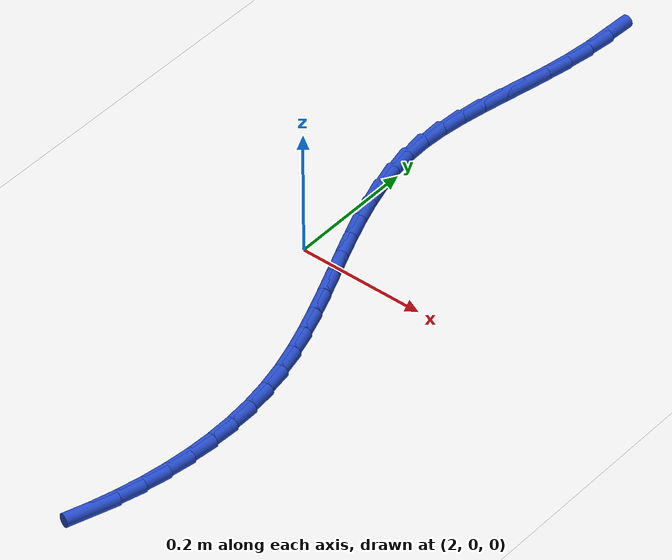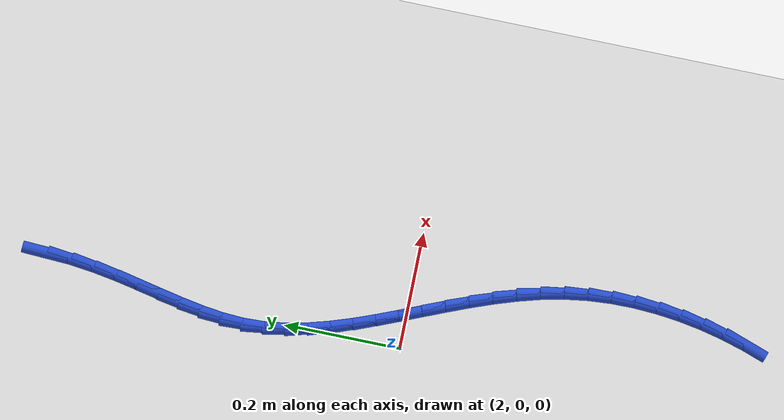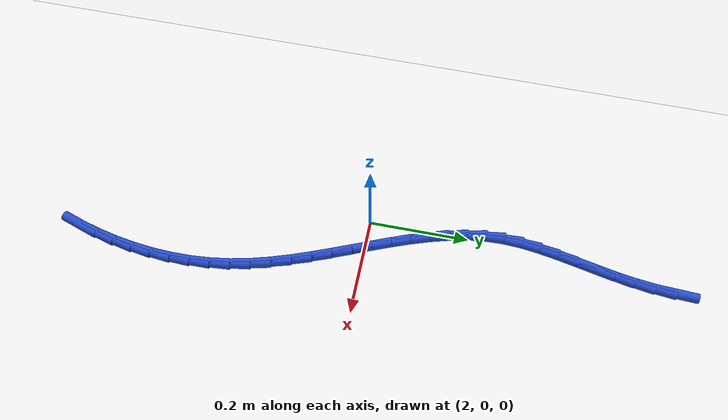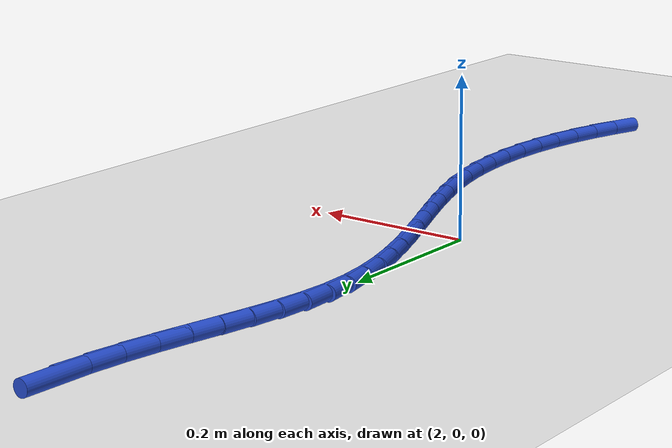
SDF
<sdf version="1.6">
 <world name="default">
  <model name="ground_plane">
   <static>1</static>
   <link name="link">
    <collision name="collision">
     <geometry><plane><normal>0 0 1</normal><size>100 100</size></plane></geometry>
     <surface><friction><ode><mu>100</mu><mu2>50</mu2></ode></friction></surface>
    </collision>
    <visual name="visual">
     <cast_shadows>0</cast_shadows>
     <geometry><plane><normal>0 0 1</normal><size>100 100</size></plane></geometry>
     <material>
      <script><uri>file://media/materials/scripts/gazebo.material</uri><name>Gazebo/WhiteGlow</name></script>
     </material>
    </visual>
   </link>
  </model>
  <model name="line">
   <link name="link_78">
    <pose>2.03948632776023 0.6213206573668499 0.01 0 1.57 1.5211225703982851</pose>
    <collision name="collision">
     <geometry><cylinder><radius>0.01</radius><length>0.08</length></cylinder></geometry>
    </collision>
    <visual name="visual">
     <material>
      <script><name>Gazebo/Blue</name><uri>file://media/materials/scripts/gazebo.material</uri></script>
     </material>
     <geometry><cylinder><radius>0.01</radius><length>0.08</length></cylinder></geometry>
    </visual>
   </link>
   <link name="link_79">
    <pose>2.037345700871489 0.5782623887482059 0.01 0 1.57 1.4560879660963555</pose>
    <collision name="collision">
     <geometry><cylinder><radius>0.01</radius><length>0.08</length></cylinder></geometry>
    </collision>
    <visual name="visual">
     <material>
      <script><name>Gazebo/Blue</name><uri>file://media/materials/scripts/gazebo.material</uri></script>
     </material>
     <geometry><cylinder><radius>0.01</radius><length>0.08</length></cylinder></geometry>
    </visual>
   </link>
   <link name="link_80">
    <pose>2.0325423166481733 0.536571460254334 0.01 0 1.57 1.4066875570438526</pose>
    <collision name="collision">
     <geometry><cylinder><radius>0.01</radius><length>0.08</length></cylinder></geometry>
    </collision>
    <visual name="visual">
     <material>
      <script><name>Gazebo/Blue</name><uri>file://media/materials/scripts/gazebo.material</uri></script>
     </material>
     <geometry><cylinder><radius>0.01</radius><length>0.08</length></cylinder></geometry>
    </visual>
   </link>
   <link name="link_81">
    <pose>2.0258391399916453 0.49609286553165727 0.01 0 1.57 1.3745373788478181</pose>
    <collision name="collision">
     <geometry><cylinder><radius>0.01</radius><length>0.08</length></cylinder></geometry>
    </collision>
    <visual name="visual">
     <material>
      <script><name>Gazebo/Blue</name><uri>file://media/materials/scripts/gazebo.material</uri></script>
     </material>
     <geometry><cylinder><radius>0.01</radius><length>0.08</length></cylinder></geometry>
    </visual>
   </link>
   <link name="link_82">
    <pose>2.018000726140692 0.45666783213092826 0.01 0 1.57 1.3608791147492256</pose>
    <collision name="collision">
     <geometry><cylinder><radius>0.01</radius><length>0.08</length></cylinder></geometry>
    </collision>
    <visual name="visual">
     <material>
      <script><name>Gazebo/Blue</name><uri>file://media/materials/scripts/gazebo.material</uri></script>
     </material>
     <geometry><cylinder><radius>0.01</radius><length>0.08</length></cylinder></geometry>
    </visual>
   </link>
   <link name="link_83">
    <pose>2.009791630334101 0.41813758760289943 0.01 0 1.57 1.3668867668807954</pose>
    <collision name="collision">
     <geometry><cylinder><radius>0.01</radius><length>0.08</length></cylinder></geometry>
    </collision>
    <visual name="visual">
     <material>
      <script><name>Gazebo/Blue</name><uri>file://media/materials/scripts/gazebo.material</uri></script>
     </material>
     <geometry><cylinder><radius>0.01</radius><length>0.08</length></cylinder></geometry>
    </visual>
   </link>
   <link name="link_84">
    <pose>2.001976407810659 0.3803433594983219 0.01 0 1.57 1.3938035550903427</pose>
    <collision name="collision">
     <geometry><cylinder><radius>0.01</radius><length>0.08</length></cylinder></geometry>
    </collision>
    <visual name="visual">
     <material>
      <script><name>Gazebo/Blue</name><uri>file://media/materials/scripts/gazebo.material</uri></script>
     </material>
     <geometry><cylinder><radius>0.01</radius><length>0.08</length></cylinder></geometry>
    </visual>
   </link>
   <link name="link_85">
    <pose>1.9953196138091542 0.3431263753679482 0.01 0 1.57 1.4428576271031066</pose>
    <collision name="collision">
     <geometry><cylinder><radius>0.01</radius><length>0.08</length></cylinder></geometry>
    </collision>
    <visual name="visual">
     <material>
      <script><name>Gazebo/Blue</name><uri>file://media/materials/scripts/gazebo.material</uri></script>
     </material>
     <geometry><cylinder><radius>0.01</radius><length>0.08</length></cylinder></geometry>
    </visual>
   </link>
   <link name="link_86">
    <pose>1.9905858035683737 0.3063278627625307 0.01 0 1.57 1.5148520904990803</pose>
    <collision name="collision">
     <geometry><cylinder><radius>0.01</radius><length>0.08</length></cylinder></geometry>
    </collision>
    <visual name="visual">
     <material>
      <script><name>Gazebo/Blue</name><uri>file://media/materials/scripts/gazebo.material</uri></script>
     </material>
     <geometry><cylinder><radius>0.01</radius><length>0.08</length></cylinder></geometry>
    </visual>
   </link>
   <link name="link_87">
    <pose>1.9885395323271045 0.2697890492328206 0.01 0 1.57 -1.5332171375938304</pose>
    <collision name="collision">
     <geometry><cylinder><radius>0.01</radius><length>0.08</length></cylinder></geometry>
    </collision>
    <visual name="visual">
     <material>
      <script><name>Gazebo/Blue</name><uri>file://media/materials/scripts/gazebo.material</uri></script>
     </material>
     <geometry><cylinder><radius>0.01</radius><length>0.08</length></cylinder></geometry>
    </visual>
   </link>
   <link name="link_88">
    <pose>1.9899093535157553 0.23335462000157955 0.01 0 1.57 -1.4379028784599488</pose>
    <collision name="collision">
     <geometry><cylinder><radius>0.01</radius><length>0.08</length></cylinder></geometry>
    </collision>
    <visual name="visual">
     <material>
      <script><name>Gazebo/Blue</name><uri>file://media/materials/scripts/gazebo.material</uri></script>
     </material>
     <geometry><cylinder><radius>0.01</radius><length>0.08</length></cylinder></geometry>
    </visual>
   </link>
   <link name="link_89">
    <pose>1.9947784799182375 0.196931239852884 0.01 0 1.57 -1.3575325213501228</pose>
    <collision name="collision">
     <geometry><cylinder><radius>0.01</radius><length>0.08</length></cylinder></geometry>
    </collision>
    <visual name="visual">
     <material>
      <script><name>Gazebo/Blue</name><uri>file://media/materials/scripts/gazebo.material</uri></script>
     </material>
     <geometry><cylinder><radius>0.01</radius><length>0.08</length></cylinder></geometry>
    </visual>
   </link>
   <link name="link_90">
    <pose>2.0026724351554925 0.16047913494162827 0.01 0 1.57 -1.2926992399388133</pose>
    <collision name="collision">
     <geometry><cylinder><radius>0.01</radius><length>0.08</length></cylinder></geometry>
    </collision>
    <visual name="visual">
     <material>
      <script><name>Gazebo/Blue</name><uri>file://media/materials/scripts/gazebo.material</uri></script>
     </material>
     <geometry><cylinder><radius>0.01</radius><length>0.08</length></cylinder></geometry>
    </visual>
   </link>
   <link name="link_91">
    <pose>2.0130983885215774 0.1239602942019989 0.01 0 1.57 -1.242737202325324</pose>
    <collision name="collision">
     <geometry><cylinder><radius>0.01</radius><length>0.08</length></cylinder></geometry>
    </collision>
    <visual name="visual">
     <material>
      <script><name>Gazebo/Blue</name><uri>file://media/materials/scripts/gazebo.material</uri></script>
     </material>
     <geometry><cylinder><radius>0.01</radius><length>0.08</length></cylinder></geometry>
    </visual>
   </link>
   <link name="link_92">
    <pose>2.0255635093105493 0.08733670656818339 0.01 0 1.57 -1.206693139628329</pose>
    <collision name="collision">
     <geometry><cylinder><radius>0.01</radius><length>0.08</length></cylinder></geometry>
    </collision>
    <visual name="visual">
     <material>
      <script><name>Gazebo/Blue</name><uri>file://media/materials/scripts/gazebo.material</uri></script>
     </material>
     <geometry><cylinder><radius>0.01</radius><length>0.08</length></cylinder></geometry>
    </visual>
   </link>
   <link name="link_93">
    <pose>2.0395749668164647 0.05057036097436932 0.01 0 1.57 -1.1836319836258284</pose>
    <collision name="collision">
     <geometry><cylinder><radius>0.01</radius><length>0.08</length></cylinder></geometry>
    </collision>
    <visual name="visual">
     <material>
      <script><name>Gazebo/Blue</name><uri>file://media/materials/scripts/gazebo.material</uri></script>
     </material>
     <geometry><cylinder><radius>0.01</radius><length>0.08</length></cylinder></geometry>
    </visual>
   </link>
   <link name="link_94">
    <pose>2.054639930333378 0.013623246354743025 0.01 0 1.57 -1.172803287694468</pose>
    <collision name="collision">
     <geometry><cylinder><radius>0.01</radius><length>0.08</length></cylinder></geometry>
    </collision>
    <visual name="visual">
     <material>
      <script><name>Gazebo/Blue</name><uri>file://media/materials/scripts/gazebo.material</uri></script>
     </material>
     <geometry><cylinder><radius>0.01</radius><length>0.08</length></cylinder></geometry>
    </visual>
   </link>
   <link name="link_95">
    <pose>2.070265569155349 -0.023542648356507864 0.01 0 1.57 -1.1737146312078346</pose>
    <collision name="collision">
     <geometry><cylinder><radius>0.01</radius><length>0.08</length></cylinder></geometry>
    </collision>
    <visual name="visual">
     <material>
      <script><name>Gazebo/Blue</name><uri>file://media/materials/scripts/gazebo.material</uri></script>
     </material>
     <geometry><cylinder><radius>0.01</radius><length>0.08</length></cylinder></geometry>
    </visual>
   </link>
   <link name="link_96">
    <pose>2.085959052576433 -0.0609653342251962 0.01 0 1.57 -1.1861484435175167</pose>
    <collision name="collision">
     <geometry><cylinder><radius>0.01</radius><length>0.08</length></cylinder></geometry>
    </collision>
    <visual name="visual">
     <material>
      <script><name>Gazebo/Blue</name><uri>file://media/materials/scripts/gazebo.material</uri></script>
     </material>
     <geometry><cylinder><radius>0.01</radius><length>0.08</length></cylinder></geometry>
    </visual>
   </link>
   <link name="link_97">
    <pose>2.1012275498906865 -0.09868282231713488 0.01 0 1.57 -1.210141843869885</pose>
    <collision name="collision">
     <geometry><cylinder><radius>0.01</radius><length>0.08</length></cylinder></geometry>
    </collision>
    <visual name="visual">
     <material>
      <script><name>Gazebo/Blue</name><uri>file://media/materials/scripts/gazebo.material</uri></script>
     </material>
     <geometry><cylinder><radius>0.01</radius><length>0.08</length></cylinder></geometry>
    </visual>
   </link>
   <link name="link_98">
    <pose>2.115578230392165 -0.13673312369813578 0.01 0 1.57 -1.2459337496849923</pose>
    <collision name="collision">
     <geometry><cylinder><radius>0.01</radius><length>0.08</length></cylinder></geometry>
    </collision>
    <visual name="visual">
     <material>
      <script><name>Gazebo/Blue</name><uri>file://media/materials/scripts/gazebo.material</uri></script>
     </material>
     <geometry><cylinder><radius>0.01</radius><length>0.08</length></cylinder></geometry>
    </visual>
   </link>
   <link name="link_99">
    <pose>2.128518263374927 -0.1751542494340135 0.01 0 1.57 -1.2938714971440366</pose>
    <collision name="collision">
     <geometry><cylinder><radius>0.01</radius><length>0.08</length></cylinder></geometry>
    </collision>
    <visual name="visual">
     <material>
      <script><name>Gazebo/Blue</name><uri>file://media/materials/scripts/gazebo.material</uri></script>
     </material>
     <geometry><cylinder><radius>0.01</radius><length>0.08</length></cylinder></geometry>
    </visual>
   </link>
   <link name="link_100">
    <pose>2.139554818133028 -0.21398421059057995 0.01 0 1.57 -1.3542616379485022</pose>
    <collision name="collision">
     <geometry><cylinder><radius>0.01</radius><length>0.08</length></cylinder></geometry>
    </collision>
    <visual name="visual">
     <material>
      <script><name>Gazebo/Blue</name><uri>file://media/materials/scripts/gazebo.material</uri></script>
     </material>
     <geometry><cylinder><radius>0.01</radius><length>0.08</length></cylinder></geometry>
    </visual>
   </link>
   <link name="link_101">
    <pose>2.1481950722040866 -0.2532610156212719 0.01 0 1.57 -1.4242128746080038</pose>
    <collision name="collision">
     <geometry><cylinder><radius>0.01</radius><length>0.08</length></cylinder></geometry>
    </collision>
    <visual name="visual">
     <material>
      <script><name>Gazebo/Blue</name><uri>file://media/materials/scripts/gazebo.material</uri></script>
     </material>
     <geometry><cylinder><radius>0.01</radius><length>0.08</length></cylinder></geometry>
    </visual>
   </link>
   <link name="link_102">
    <pose>2.154060243810876 -0.2929865336010778 0.01 0 1.57 -1.4932523351027345</pose>
    <collision name="collision">
     <geometry><cylinder><radius>0.01</radius><length>0.08</length></cylinder></geometry>
    </collision>
    <visual name="visual">
     <material>
      <script><name>Gazebo/Blue</name><uri>file://media/materials/scripts/gazebo.material</uri></script>
     </material>
     <geometry><cylinder><radius>0.01</radius><length>0.08</length></cylinder></geometry>
    </visual>
   </link>
   <link name="link_103">
    <pose>2.157172056791321 -0.33303571377829 0.01 0 1.57 -1.5591595414252912</pose>
    <collision name="collision">
     <geometry><cylinder><radius>0.01</radius><length>0.08</length></cylinder></geometry>
    </collision>
    <visual name="visual">
     <material>
      <script><name>Gazebo/Blue</name><uri>file://media/materials/scripts/gazebo.material</uri></script>
     </material>
     <geometry><cylinder><radius>0.01</radius><length>0.08</length></cylinder></geometry>
    </visual>
   </link>
   <link name="link_104">
    <pose>2.1576401087803454 -0.37325565828329693 0.01 0 1.57 1.5194938734135208</pose>
    <collision name="collision">
     <geometry><cylinder><radius>0.01</radius><length>0.08</length></cylinder></geometry>
    </collision>
    <visual name="visual">
     <material>
      <script><name>Gazebo/Blue</name><uri>file://media/materials/scripts/gazebo.material</uri></script>
     </material>
     <geometry><cylinder><radius>0.01</radius><length>0.08</length></cylinder></geometry>
    </visual>
   </link>
   <link name="link_105">
    <pose>2.155573997412872 -0.41349346924648595 0.01 0 1.57 1.459281687127908</pose>
    <collision name="collision">
     <geometry><cylinder><radius>0.01</radius><length>0.08</length></cylinder></geometry>
    </collision>
    <visual name="visual">
     <material>
      <script><name>Gazebo/Blue</name><uri>file://media/materials/scripts/gazebo.material</uri></script>
     </material>
     <geometry><cylinder><radius>0.01</radius><length>0.08</length></cylinder></geometry>
    </visual>
   </link>
   <link name="link_106">
    <pose>2.1510833203238238 -0.45359624879824734 0.01 0 1.57 1.4015001657494344</pose>
    <collision name="collision">
     <geometry><cylinder><radius>0.01</radius><length>0.08</length></cylinder></geometry>
    </collision>
    <visual name="visual">
     <material>
      <script><name>Gazebo/Blue</name><uri>file://media/materials/scripts/gazebo.material</uri></script>
     </material>
     <geometry><cylinder><radius>0.01</radius><length>0.08</length></cylinder></geometry>
    </visual>
   </link>
   <link name="link_107">
    <pose>2.144277675148124 -0.4934110990689686 0.01 0 1.57 1.3458139077225082</pose>
    <collision name="collision">
     <geometry><cylinder><radius>0.01</radius><length>0.08</length></cylinder></geometry>
    </collision>
    <visual name="visual">
     <material>
      <script><name>Gazebo/Blue</name><uri>file://media/materials/scripts/gazebo.material</uri></script>
     </material>
     <geometry><cylinder><radius>0.01</radius><length>0.08</length></cylinder></geometry>
    </visual>
   </link>
   <link name="link_108">
    <pose>2.1352666595206964 -0.5327851221890382 0.01 0 1.57 1.2918601734936577</pose>
    <collision name="collision">
     <geometry><cylinder><radius>0.01</radius><length>0.08</length></cylinder></geometry>
    </collision>
    <visual name="visual">
     <material>
      <script><name>Gazebo/Blue</name><uri>file://media/materials/scripts/gazebo.material</uri></script>
     </material>
     <geometry><cylinder><radius>0.01</radius><length>0.08</length></cylinder></geometry>
    </visual>
   </link>
   <link name="link_109">
    <pose>2.124159871076462 -0.5715654202888443 0.01 0 1.57 1.2392561911715094</pose>
    <collision name="collision">
     <geometry><cylinder><radius>0.01</radius><length>0.08</length></cylinder></geometry>
    </collision>
    <visual name="visual">
     <material>
      <script><name>Gazebo/Blue</name><uri>file://media/materials/scripts/gazebo.material</uri></script>
     </material>
     <geometry><cylinder><radius>0.01</radius><length>0.08</length></cylinder></geometry>
    </visual>
   </link>
  </model>
 </world>
</sdf>
